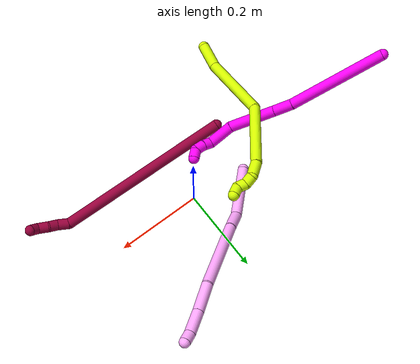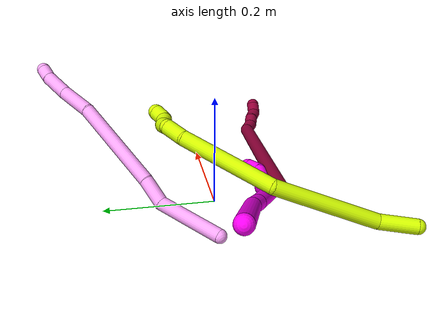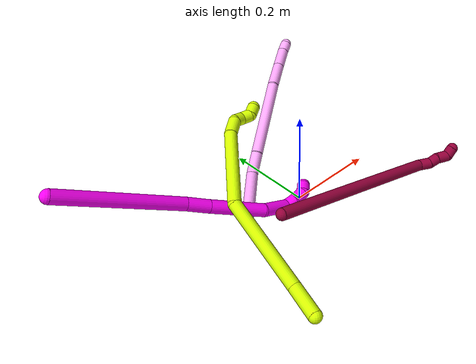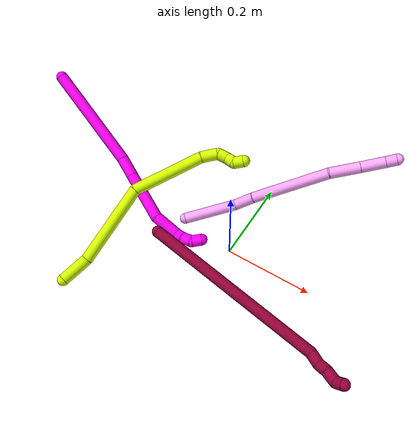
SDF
<sdf version="1.7">
 <world name="default">
  <model name="photoneo_s_sensor">
   <static>1</static>
   <pose>0 0 2 1.57079 1.57079 3.14159</pose>
   <link name="link">
    <inertial><mass>0.1</mass></inertial>
    <sensor name="sensor" type="depth">
     <update_rate>30</update_rate>
     <camera>
      <horizontal_fov>1.22</horizontal_fov>
      <image><width>1920</width><height>1200</height><format>B8G8R8</format></image>
      <clip><near>0.1</near><far>4</far></clip>
      <depth_camera><output>points</output></depth_camera>
     </camera>
     <plugin name="camera_plugin" filename="libgazebo_ros_depth_camera.so">
      <baseline>0.2</baseline>
      <alwaysOn>1</alwaysOn>
      <updateRate>0.0</updateRate>
      <cameraName>camera_ir</cameraName>
      <imageTopicName>/camera/color/image_raw</imageTopicName>
      <cameraInfoTopicName>/camera/color/camera_info</cameraInfoTopicName>
      <depthImageTopicName>/camera/depth/image_raw</depthImageTopicName>
      <depthImageCameraInfoTopicName>/camera/depth/camera_info</depthImageCameraInfoTopicName>
      <pointCloudTopicName>/camera/depth/points</pointCloudTopicName>
      <frameName>fr_optical</frameName>
      <pointCloudCutoff>0.1</pointCloudCutoff>
      <pointCloudCutoffMax>2.0</pointCloudCutoffMax>
      <distortionK1>0</distortionK1>
      <distortionK2>0</distortionK2>
      <distortionK3>0</distortionK3>
      <distortionT1>0</distortionT1>
      <distortionT2>0</distortionT2>
      <CxPrime>0</CxPrime>
      <Cx>0</Cx>
      <Cy>0</Cy>
      <focalLength>0</focalLength>
      <hackBaseline>0</hackBaseline>
     </plugin>
    </sensor>
   </link>
  </model>
  <model name="bin">
   <static>1</static>
   <link name="bottom">
    <collision name="collision-bottom">
     <pose>0 0 -0.01 0 -0 0</pose>
     <geometry><box><size>0.8 0.6 0.02</size></box></geometry>
     <surface>
      <friction><ode><mu>100</mu><mu2>100</mu2></ode></friction>
      <contact><collide_bitmask>65535</collide_bitmask></contact>
     </surface>
    </collision>
   </link>
   <link name="west_wall">
    <collision name="collision-west_wall">
     <pose>-0.41 0 0.1 0 -0 0</pose>
     <geometry><box><size>0.02 0.6 0.2</size></box></geometry>
     <surface>
      <friction><ode><mu>100</mu><mu2>100</mu2></ode></friction>
      <contact><collide_bitmask>65535</collide_bitmask></contact>
     </surface>
    </collision>
   </link>
   <link name="east_wall">
    <collision name="collision-east_wall">
     <pose>0.41 0 0.1 0 -0 0</pose>
     <geometry><box><size>0.02 0.6 0.2</size></box></geometry>
     <surface>
      <friction><ode><mu>100</mu><mu2>100</mu2></ode></friction>
      <contact><collide_bitmask>65535</collide_bitmask></contact>
     </surface>
    </collision>
   </link>
   <link name="south_wall">
    <collision name="collision-south_wall">
     <pose>0 -0.31 0.1 0 -0 0</pose>
     <geometry><box><size>0.8 0.02 0.2</size></box></geometry>
     <surface>
      <friction><ode><mu>100</mu><mu2>100</mu2></ode></friction>
      <contact><collide_bitmask>65535</collide_bitmask></contact>
     </surface>
    </collision>
   </link>
   <link name="north_wall">
    <collision name="collision-north_wall">
     <pose>0 0.31 0.1 0 -0 0</pose>
     <geometry><box><size>0.8 0.02 0.2</size></box></geometry>
     <surface>
      <friction><ode><mu>100</mu><mu2>100</mu2></ode></friction>
      <contact><collide_bitmask>65535</collide_bitmask></contact>
     </surface>
    </collision>
   </link>
  </model>
  <model name="4">
   <static>0</static>
   <link name="4">
    <collision name="collision-cylinder-e_1_1_4">
     <pose>0.025564 0.0043 0.056036 -0.07659 0.426898 -0.016609</pose>
     <geometry><cylinder><radius>0.0125</radius><length>0.123483</length></cylinder></geometry>
     <surface>
      <friction><ode><mu>1.16</mu><mu2>1.16</mu2><slip1>0</slip1><slip2>0</slip2></ode></friction>
      <contact><ode><kp>1e+06</kp><kd>1</kd><max_vel>0</max_vel><min_depth>0.001</min_depth></ode></contact>
     </surface>
    </collision>
    <visual name="visual-cylinder-e_1_1_4">
     <pose>0.025564 0.0043 0.056036 -0.07659 0.426898 -0.016609</pose>
     <geometry><cylinder><radius>0.0125</radius><length>0.123483</length></cylinder></geometry>
     <material><ambient>1 0.65098 0.996078 1</ambient></material>
    </visual>
    <collision name="collision-cylinder-e_2_4_5">
     <pose>0.052725 0.018265 0.134788 -0.402264 0.064603 -0.013176</pose>
     <geometry><cylinder><radius>0.0125</radius><length>0.049477</length></cylinder></geometry>
     <surface>
      <friction><ode><mu>1.16</mu><mu2>1.16</mu2><slip1>0</slip1><slip2>0</slip2></ode></friction>
      <contact><ode><kp>1e+06</kp><kd>1</kd><max_vel>0</max_vel><min_depth>0.001</min_depth></ode></contact>
     </surface>
    </collision>
    <visual name="visual-cylinder-e_2_4_5">
     <pose>0.052725 0.018265 0.134788 -0.402264 0.064603 -0.013176</pose>
     <geometry><cylinder><radius>0.0125</radius><length>0.049477</length></cylinder></geometry>
     <material><ambient>1 0.65098 0.996078 1</ambient></material>
    </visual>
    <collision name="collision-cylinder-e_3_5_6">
     <pose>0.067412 0.053436 0.243399 -0.28864 0.145068 -0.021119</pose>
     <geometry><cylinder><radius>0.0125</radius><length>0.181106</length></cylinder></geometry>
     <surface>
      <friction><ode><mu>1.16</mu><mu2>1.16</mu2><slip1>0</slip1><slip2>0</slip2></ode></friction>
      <contact><ode><kp>1e+06</kp><kd>1</kd><max_vel>0</max_vel><min_depth>0.001</min_depth></ode></contact>
     </surface>
    </collision>
    <visual name="visual-cylinder-e_3_5_6">
     <pose>0.067412 0.053436 0.243399 -0.28864 0.145068 -0.021119</pose>
     <geometry><cylinder><radius>0.0125</radius><length>0.181106</length></cylinder></geometry>
     <material><ambient>1 0.65098 0.996078 1</ambient></material>
    </visual>
    <collision name="collision-cylinder-e_4_6_7">
     <pose>0.089492 0.081403 0.361729 -0.075776 0.269629 -0.010283</pose>
     <geometry><cylinder><radius>0.0125</radius><length>0.067495</length></cylinder></geometry>
     <surface>
      <friction><ode><mu>1.16</mu><mu2>1.16</mu2><slip1>0</slip1><slip2>0</slip2></ode></friction>
      <contact><ode><kp>1e+06</kp><kd>1</kd><max_vel>0</max_vel><min_depth>0.001</min_depth></ode></contact>
     </surface>
    </collision>
    <visual name="visual-cylinder-e_4_6_7">
     <pose>0.089492 0.081403 0.361729 -0.075776 0.269629 -0.010283</pose>
     <geometry><cylinder><radius>0.0125</radius><length>0.067495</length></cylinder></geometry>
     <material><ambient>1 0.65098 0.996078 1</ambient></material>
    </visual>
    <collision name="collision-cylinder-e_5_7_8">
     <pose>0.104371 0.087135 0.420547 -0.123297 0.218006 -0.01351</pose>
     <geometry><cylinder><radius>0.0125</radius><length>0.054458</length></cylinder></geometry>
     <surface>
      <friction><ode><mu>1.16</mu><mu2>1.16</mu2><slip1>0</slip1><slip2>0</slip2></ode></friction>
      <contact><ode><kp>1e+06</kp><kd>1</kd><max_vel>0</max_vel><min_depth>0.001</min_depth></ode></contact>
     </surface>
    </collision>
    <visual name="visual-cylinder-e_5_7_8">
     <pose>0.104371 0.087135 0.420547 -0.123297 0.218006 -0.01351</pose>
     <geometry><cylinder><radius>0.0125</radius><length>0.054458</length></cylinder></geometry>
     <material><ambient>1 0.65098 0.996078 1</ambient></material>
    </visual>
    <collision name="collision-cylinder-e_6_8_2">
     <pose>0.110709 0.09312 0.4586 -0.228633 0.037426 -0.004298</pose>
     <geometry><cylinder><radius>0.0125</radius><length>0.023981</length></cylinder></geometry>
     <surface>
      <friction><ode><mu>1.16</mu><mu2>1.16</mu2><slip1>0</slip1><slip2>0</slip2></ode></friction>
      <contact><ode><kp>1e+06</kp><kd>1</kd><max_vel>0</max_vel><min_depth>0.001</min_depth></ode></contact>
     </surface>
    </collision>
    <visual name="visual-cylinder-e_6_8_2">
     <pose>0.110709 0.09312 0.4586 -0.228633 0.037426 -0.004298</pose>
     <geometry><cylinder><radius>0.0125</radius><length>0.023981</length></cylinder></geometry>
     <material><ambient>1 0.65098 0.996078 1</ambient></material>
    </visual>
    <collision name="collision-sphere-2">
     <pose>0.111157 0.095836 0.47027 0 -0 0</pose>
     <geometry><sphere><radius>0.0125</radius></sphere></geometry>
     <surface>
      <friction><ode><mu>1.16</mu><mu2>1.16</mu2><slip1>0</slip1><slip2>0</slip2></ode></friction>
      <contact><ode><kp>1e+06</kp><kd>1</kd><max_vel>0</max_vel><min_depth>0.001</min_depth></ode></contact>
     </surface>
    </collision>
    <visual name="visual-sphere-2">
     <pose>0.111157 0.095836 0.47027 0 -0 0</pose>
     <geometry><sphere><radius>0.0125</radius></sphere></geometry>
     <material><ambient>1 0.65098 0.996078 1</ambient></material>
    </visual>
    <collision name="collision-sphere-4">
     <pose>0.051128 0.0086 0.112071 0 -0 0</pose>
     <geometry><sphere><radius>0.0125</radius></sphere></geometry>
     <surface>
      <friction><ode><mu>1.16</mu><mu2>1.16</mu2><slip1>0</slip1><slip2>0</slip2></ode></friction>
      <contact><ode><kp>1e+06</kp><kd>1</kd><max_vel>0</max_vel><min_depth>0.001</min_depth></ode></contact>
     </surface>
    </collision>
    <visual name="visual-sphere-4">
     <pose>0.051128 0.0086 0.112071 0 -0 0</pose>
     <geometry><sphere><radius>0.0125</radius></sphere></geometry>
     <material><ambient>1 0.65098 0.996078 1</ambient></material>
    </visual>
    <collision name="collision-sphere-1">
     <geometry><sphere><radius>0.0125</radius></sphere></geometry>
     <surface>
      <friction><ode><mu>1.16</mu><mu2>1.16</mu2><slip1>0</slip1><slip2>0</slip2></ode></friction>
      <contact><ode><kp>1e+06</kp><kd>1</kd><max_vel>0</max_vel><min_depth>0.001</min_depth></ode></contact>
     </surface>
    </collision>
    <visual name="visual-sphere-1">
     <geometry><sphere><radius>0.0125</radius></sphere></geometry>
     <material><ambient>1 0.65098 0.996078 1</ambient></material>
    </visual>
    <collision name="collision-sphere-8">
     <pose>0.11026 0.090405 0.446929 0 -0 0</pose>
     <geometry><sphere><radius>0.0125</radius></sphere></geometry>
     <surface>
      <friction><ode><mu>1.16</mu><mu2>1.16</mu2><slip1>0</slip1><slip2>0</slip2></ode></friction>
      <contact><ode><kp>1e+06</kp><kd>1</kd><max_vel>0</max_vel><min_depth>0.001</min_depth></ode></contact>
     </surface>
    </collision>
    <visual name="visual-sphere-8">
     <pose>0.11026 0.090405 0.446929 0 -0 0</pose>
     <geometry><sphere><radius>0.0125</radius></sphere></geometry>
     <material><ambient>1 0.65098 0.996078 1</ambient></material>
    </visual>
    <collision name="collision-sphere-5">
     <pose>0.054322 0.02793 0.157504 0 -0 0</pose>
     <geometry><sphere><radius>0.0125</radius></sphere></geometry>
     <surface>
      <friction><ode><mu>1.16</mu><mu2>1.16</mu2><slip1>0</slip1><slip2>0</slip2></ode></friction>
      <contact><ode><kp>1e+06</kp><kd>1</kd><max_vel>0</max_vel><min_depth>0.001</min_depth></ode></contact>
     </surface>
    </collision>
    <visual name="visual-sphere-5">
     <pose>0.054322 0.02793 0.157504 0 -0 0</pose>
     <geometry><sphere><radius>0.0125</radius></sphere></geometry>
     <material><ambient>1 0.65098 0.996078 1</ambient></material>
    </visual>
    <collision name="collision-sphere-6">
     <pose>0.080503 0.078941 0.329294 0 -0 0</pose>
     <geometry><sphere><radius>0.0125</radius></sphere></geometry>
     <surface>
      <friction><ode><mu>1.16</mu><mu2>1.16</mu2><slip1>0</slip1><slip2>0</slip2></ode></friction>
      <contact><ode><kp>1e+06</kp><kd>1</kd><max_vel>0</max_vel><min_depth>0.001</min_depth></ode></contact>
     </surface>
    </collision>
    <visual name="visual-sphere-6">
     <pose>0.080503 0.078941 0.329294 0 -0 0</pose>
     <geometry><sphere><radius>0.0125</radius></sphere></geometry>
     <material><ambient>1 0.65098 0.996078 1</ambient></material>
    </visual>
    <collision name="collision-sphere-7">
     <pose>0.098482 0.083866 0.394164 0 -0 0</pose>
     <geometry><sphere><radius>0.0125</radius></sphere></geometry>
     <surface>
      <friction><ode><mu>1.16</mu><mu2>1.16</mu2><slip1>0</slip1><slip2>0</slip2></ode></friction>
      <contact><ode><kp>1e+06</kp><kd>1</kd><max_vel>0</max_vel><min_depth>0.001</min_depth></ode></contact>
     </surface>
    </collision>
    <visual name="visual-sphere-7">
     <pose>0.098482 0.083866 0.394164 0 -0 0</pose>
     <geometry><sphere><radius>0.0125</radius></sphere></geometry>
     <material><ambient>1 0.65098 0.996078 1</ambient></material>
    </visual>
    <inertial>
     <pose>0.064706 0.04717 0.231968 0 -0 0</pose>
     <mass>0.5</mass>
     <inertia>
      <ixx>0.000696</ixx>
      <ixy>0</ixy>
      <ixz>0</ixz>
      <iyy>0.000694</iyy>
      <iyz>0</iyz>
      <izz>-0.000276</izz>
     </inertia>
    </inertial>
   </link>
   <pose>-0.132307 0.016406 0.011487 1.30068 0.315199 1.81667</pose>
  </model>
  <model name="8">
   <static>0</static>
   <link name="8">
    <collision name="collision-cylinder-e_1_1_4">
     <pose>0.186236 -0.015188 0.078467 0.191189 1.16541 0.126219</pose>
     <geometry><cylinder><radius>0.0125</radius><length>0.405322</length></cylinder></geometry>
     <surface>
      <friction><ode><mu>1.16</mu><mu2>1.16</mu2><slip1>0</slip1><slip2>0</slip2></ode></friction>
      <contact><ode><kp>1e+06</kp><kd>1</kd><max_vel>0</max_vel><min_depth>0.001</min_depth></ode></contact>
     </surface>
    </collision>
    <visual name="visual-cylinder-e_1_1_4">
     <pose>0.186236 -0.015188 0.078467 0.191189 1.16541 0.126219</pose>
     <geometry><cylinder><radius>0.0125</radius><length>0.405322</length></cylinder></geometry>
     <material><ambient>0.584314 0 0.227451 1</ambient></material>
    </visual>
    <collision name="collision-cylinder-e_2_4_5">
     <pose>0.382344 -0.037364 0.162553 0.893702 0.833428 0.418008</pose>
     <geometry><cylinder><radius>0.0125</radius><length>0.026674</length></cylinder></geometry>
     <surface>
      <friction><ode><mu>1.16</mu><mu2>1.16</mu2><slip1>0</slip1><slip2>0</slip2></ode></friction>
      <contact><ode><kp>1e+06</kp><kd>1</kd><max_vel>0</max_vel><min_depth>0.001</min_depth></ode></contact>
     </surface>
    </collision>
    <visual name="visual-cylinder-e_2_4_5">
     <pose>0.382344 -0.037364 0.162553 0.893702 0.833428 0.418008</pose>
     <geometry><cylinder><radius>0.0125</radius><length>0.026674</length></cylinder></geometry>
     <material><ambient>0.584314 0 0.227451 1</ambient></material>
    </visual>
    <collision name="collision-cylinder-e_3_5_6">
     <pose>0.398547 -0.048307 0.17577 0.479837 0.63639 0.160809</pose>
     <geometry><cylinder><radius>0.0125</radius><length>0.021303</length></cylinder></geometry>
     <surface>
      <friction><ode><mu>1.16</mu><mu2>1.16</mu2><slip1>0</slip1><slip2>0</slip2></ode></friction>
      <contact><ode><kp>1e+06</kp><kd>1</kd><max_vel>0</max_vel><min_depth>0.001</min_depth></ode></contact>
     </surface>
    </collision>
    <visual name="visual-cylinder-e_3_5_6">
     <pose>0.398547 -0.048307 0.17577 0.479837 0.63639 0.160809</pose>
     <geometry><cylinder><radius>0.0125</radius><length>0.021303</length></cylinder></geometry>
     <material><ambient>0.584314 0 0.227451 1</ambient></material>
    </visual>
    <collision name="collision-cylinder-e_4_6_7">
     <pose>0.414545 -0.058409 0.189508 0.786049 0.838769 0.365556</pose>
     <geometry><cylinder><radius>0.0125</radius><length>0.025995</length></cylinder></geometry>
     <surface>
      <friction><ode><mu>1.16</mu><mu2>1.16</mu2><slip1>0</slip1><slip2>0</slip2></ode></friction>
      <contact><ode><kp>1e+06</kp><kd>1</kd><max_vel>0</max_vel><min_depth>0.001</min_depth></ode></contact>
     </surface>
    </collision>
    <visual name="visual-cylinder-e_4_6_7">
     <pose>0.414545 -0.058409 0.189508 0.786049 0.838769 0.365556</pose>
     <geometry><cylinder><radius>0.0125</radius><length>0.025995</length></cylinder></geometry>
     <material><ambient>0.584314 0 0.227451 1</ambient></material>
    </visual>
    <collision name="collision-cylinder-e_5_7_2">
     <pose>0.426957 -0.06672 0.205392 0.218542 0.268248 0.029604</pose>
     <geometry><cylinder><radius>0.0125</radius><length>0.020705</length></cylinder></geometry>
     <surface>
      <friction><ode><mu>1.16</mu><mu2>1.16</mu2><slip1>0</slip1><slip2>0</slip2></ode></friction>
      <contact><ode><kp>1e+06</kp><kd>1</kd><max_vel>0</max_vel><min_depth>0.001</min_depth></ode></contact>
     </surface>
    </collision>
    <visual name="visual-cylinder-e_5_7_2">
     <pose>0.426957 -0.06672 0.205392 0.218542 0.268248 0.029604</pose>
     <geometry><cylinder><radius>0.0125</radius><length>0.020705</length></cylinder></geometry>
     <material><ambient>0.584314 0 0.227451 1</ambient></material>
    </visual>
    <collision name="collision-sphere-2">
     <pose>0.429701 -0.068884 0.215137 0 -0 0</pose>
     <geometry><sphere><radius>0.0125</radius></sphere></geometry>
     <surface>
      <friction><ode><mu>1.16</mu><mu2>1.16</mu2><slip1>0</slip1><slip2>0</slip2></ode></friction>
      <contact><ode><kp>1e+06</kp><kd>1</kd><max_vel>0</max_vel><min_depth>0.001</min_depth></ode></contact>
     </surface>
    </collision>
    <visual name="visual-sphere-2">
     <pose>0.429701 -0.068884 0.215137 0 -0 0</pose>
     <geometry><sphere><radius>0.0125</radius></sphere></geometry>
     <material><ambient>0.584314 0 0.227451 1</ambient></material>
    </visual>
    <collision name="collision-sphere-7">
     <pose>0.424213 -0.064556 0.195647 0 -0 0</pose>
     <geometry><sphere><radius>0.0125</radius></sphere></geometry>
     <surface>
      <friction><ode><mu>1.16</mu><mu2>1.16</mu2><slip1>0</slip1><slip2>0</slip2></ode></friction>
      <contact><ode><kp>1e+06</kp><kd>1</kd><max_vel>0</max_vel><min_depth>0.001</min_depth></ode></contact>
     </surface>
    </collision>
    <visual name="visual-sphere-7">
     <pose>0.424213 -0.064556 0.195647 0 -0 0</pose>
     <geometry><sphere><radius>0.0125</radius></sphere></geometry>
     <material><ambient>0.584314 0 0.227451 1</ambient></material>
    </visual>
    <collision name="collision-sphere-6">
     <pose>0.404877 -0.052262 0.183369 0 -0 0</pose>
     <geometry><sphere><radius>0.0125</radius></sphere></geometry>
     <surface>
      <friction><ode><mu>1.16</mu><mu2>1.16</mu2><slip1>0</slip1><slip2>0</slip2></ode></friction>
      <contact><ode><kp>1e+06</kp><kd>1</kd><max_vel>0</max_vel><min_depth>0.001</min_depth></ode></contact>
     </surface>
    </collision>
    <visual name="visual-sphere-6">
     <pose>0.404877 -0.052262 0.183369 0 -0 0</pose>
     <geometry><sphere><radius>0.0125</radius></sphere></geometry>
     <material><ambient>0.584314 0 0.227451 1</ambient></material>
    </visual>
    <collision name="collision-sphere-5">
     <pose>0.392217 -0.044353 0.168171 0 -0 0</pose>
     <geometry><sphere><radius>0.0125</radius></sphere></geometry>
     <surface>
      <friction><ode><mu>1.16</mu><mu2>1.16</mu2><slip1>0</slip1><slip2>0</slip2></ode></friction>
      <contact><ode><kp>1e+06</kp><kd>1</kd><max_vel>0</max_vel><min_depth>0.001</min_depth></ode></contact>
     </surface>
    </collision>
    <visual name="visual-sphere-5">
     <pose>0.392217 -0.044353 0.168171 0 -0 0</pose>
     <geometry><sphere><radius>0.0125</radius></sphere></geometry>
     <material><ambient>0.584314 0 0.227451 1</ambient></material>
    </visual>
    <collision name="collision-sphere-1">
     <geometry><sphere><radius>0.0125</radius></sphere></geometry>
     <surface>
      <friction><ode><mu>1.16</mu><mu2>1.16</mu2><slip1>0</slip1><slip2>0</slip2></ode></friction>
      <contact><ode><kp>1e+06</kp><kd>1</kd><max_vel>0</max_vel><min_depth>0.001</min_depth></ode></contact>
     </surface>
    </collision>
    <visual name="visual-sphere-1">
     <geometry><sphere><radius>0.0125</radius></sphere></geometry>
     <material><ambient>0.584314 0 0.227451 1</ambient></material>
    </visual>
    <collision name="collision-sphere-4">
     <pose>0.372472 -0.030375 0.156935 0 -0 0</pose>
     <geometry><sphere><radius>0.0125</radius></sphere></geometry>
     <surface>
      <friction><ode><mu>1.16</mu><mu2>1.16</mu2><slip1>0</slip1><slip2>0</slip2></ode></friction>
      <contact><ode><kp>1e+06</kp><kd>1</kd><max_vel>0</max_vel><min_depth>0.001</min_depth></ode></contact>
     </surface>
    </collision>
    <visual name="visual-sphere-4">
     <pose>0.372472 -0.030375 0.156935 0 -0 0</pose>
     <geometry><sphere><radius>0.0125</radius></sphere></geometry>
     <material><ambient>0.584314 0 0.227451 1</ambient></material>
    </visual>
    <inertial>
     <pose>0.227582 -0.022163 0.098128 0 -0 0</pose>
     <mass>0.5</mass>
     <inertia>
      <ixx>0.002495</ixx>
      <ixy>0</ixy>
      <ixz>0</ixz>
      <iyy>0.005822</iyy>
      <iyz>0</iyz>
      <izz>-0.004682</izz>
     </inertia>
    </inertial>
   </link>
   <pose>-0.130011 -0.084824 0.088675 -0.264333 0.596081 -0.119896</pose>
  </model>
  <model name="10">
   <static>0</static>
   <link name="10">
    <collision name="collision-cylinder-e_1_1_4">
     <pose>0.002801 -0.002575 -0.113252 3.11886 0.024724 1.65471</pose>
     <geometry><cylinder><radius>0.0125</radius><length>0.226632</length></cylinder></geometry>
     <surface>
      <friction><ode><mu>1.16</mu><mu2>1.16</mu2><slip1>0</slip1><slip2>0</slip2></ode></friction>
      <contact><ode><kp>1e+06</kp><kd>1</kd><max_vel>0</max_vel><min_depth>0.001</min_depth></ode></contact>
     </surface>
    </collision>
    <visual name="visual-cylinder-e_1_1_4">
     <pose>0.002801 -0.002575 -0.113252 3.11886 0.024724 1.65471</pose>
     <geometry><cylinder><radius>0.0125</radius><length>0.226632</length></cylinder></geometry>
     <material><ambient>1 0 0.964706 1</ambient></material>
    </visual>
    <collision name="collision-cylinder-e_2_4_5">
     <pose>0.005711 -0.008613 -0.248052 2.98224 0.00497 0.062222</pose>
     <geometry><cylinder><radius>0.0125</radius><length>0.043649</length></cylinder></geometry>
     <surface>
      <friction><ode><mu>1.16</mu><mu2>1.16</mu2><slip1>0</slip1><slip2>0</slip2></ode></friction>
      <contact><ode><kp>1e+06</kp><kd>1</kd><max_vel>0</max_vel><min_depth>0.001</min_depth></ode></contact>
     </surface>
    </collision>
    <visual name="visual-cylinder-e_2_4_5">
     <pose>0.005711 -0.008613 -0.248052 2.98224 0.00497 0.062222</pose>
     <geometry><cylinder><radius>0.0125</radius><length>0.043649</length></cylinder></geometry>
     <material><ambient>1 0 0.964706 1</ambient></material>
    </visual>
    <collision name="collision-cylinder-e_3_5_6">
     <pose>0.00794 -0.021297 -0.32235 2.96853 0.03958 0.448657</pose>
     <geometry><cylinder><radius>0.0125</radius><length>0.107185</length></cylinder></geometry>
     <surface>
      <friction><ode><mu>1.16</mu><mu2>1.16</mu2><slip1>0</slip1><slip2>0</slip2></ode></friction>
      <contact><ode><kp>1e+06</kp><kd>1</kd><max_vel>0</max_vel><min_depth>0.001</min_depth></ode></contact>
     </surface>
    </collision>
    <visual name="visual-cylinder-e_3_5_6">
     <pose>0.00794 -0.021297 -0.32235 2.96853 0.03958 0.448657</pose>
     <geometry><cylinder><radius>0.0125</radius><length>0.107185</length></cylinder></geometry>
     <material><ambient>1 0 0.964706 1</ambient></material>
    </visual>
    <collision name="collision-cylinder-e_4_6_7">
     <pose>0.015179 -0.026082 -0.403618 -2.98726 0.175516 -1.69967</pose>
     <geometry><cylinder><radius>0.0125</radius><length>0.05862</length></cylinder></geometry>
     <surface>
      <friction><ode><mu>1.16</mu><mu2>1.16</mu2><slip1>0</slip1><slip2>0</slip2></ode></friction>
      <contact><ode><kp>1e+06</kp><kd>1</kd><max_vel>0</max_vel><min_depth>0.001</min_depth></ode></contact>
     </surface>
    </collision>
    <visual name="visual-cylinder-e_4_6_7">
     <pose>0.015179 -0.026082 -0.403618 -2.98726 0.175516 -1.69967</pose>
     <geometry><cylinder><radius>0.0125</radius><length>0.05862</length></cylinder></geometry>
     <material><ambient>1 0 0.964706 1</ambient></material>
    </visual>
    <collision name="collision-cylinder-e_5_7_8">
     <pose>0.02716 -0.023451 -0.439406 2.89823 0.741609 2.53213</pose>
     <geometry><cylinder><radius>0.0125</radius><length>0.020321</length></cylinder></geometry>
     <surface>
      <friction><ode><mu>1.16</mu><mu2>1.16</mu2><slip1>0</slip1><slip2>0</slip2></ode></friction>
      <contact><ode><kp>1e+06</kp><kd>1</kd><max_vel>0</max_vel><min_depth>0.001</min_depth></ode></contact>
     </surface>
    </collision>
    <visual name="visual-cylinder-e_5_7_8">
     <pose>0.02716 -0.023451 -0.439406 2.89823 0.741609 2.53213</pose>
     <geometry><cylinder><radius>0.0125</radius><length>0.020321</length></cylinder></geometry>
     <material><ambient>1 0 0.964706 1</ambient></material>
    </visual>
    <collision name="collision-cylinder-e_6_8_9">
     <pose>0.041727 -0.024739 -0.454782 -3.07779 0.759001 -2.98192</pose>
     <geometry><cylinder><radius>0.0125</radius><length>0.022386</length></cylinder></geometry>
     <surface>
      <friction><ode><mu>1.16</mu><mu2>1.16</mu2><slip1>0</slip1><slip2>0</slip2></ode></friction>
      <contact><ode><kp>1e+06</kp><kd>1</kd><max_vel>0</max_vel><min_depth>0.001</min_depth></ode></contact>
     </surface>
    </collision>
    <visual name="visual-cylinder-e_6_8_9">
     <pose>0.041727 -0.024739 -0.454782 -3.07779 0.759001 -2.98192</pose>
     <geometry><cylinder><radius>0.0125</radius><length>0.022386</length></cylinder></geometry>
     <material><ambient>1 0 0.964706 1</ambient></material>
    </visual>
    <collision name="collision-cylinder-e_7_9_2">
     <pose>0.055551 -0.017086 -0.467791 -2.17307 0.615391 -1.08688</pose>
     <geometry><cylinder><radius>0.0125</radius><length>0.021206</length></cylinder></geometry>
     <surface>
      <friction><ode><mu>1.16</mu><mu2>1.16</mu2><slip1>0</slip1><slip2>0</slip2></ode></friction>
      <contact><ode><kp>1e+06</kp><kd>1</kd><max_vel>0</max_vel><min_depth>0.001</min_depth></ode></contact>
     </surface>
    </collision>
    <visual name="visual-cylinder-e_7_9_2">
     <pose>0.055551 -0.017086 -0.467791 -2.17307 0.615391 -1.08688</pose>
     <geometry><cylinder><radius>0.0125</radius><length>0.021206</length></cylinder></geometry>
     <material><ambient>1 0 0.964706 1</ambient></material>
    </visual>
    <collision name="collision-sphere-2">
     <pose>0.061672 -0.009952 -0.472696 0 -0 0</pose>
     <geometry><sphere><radius>0.0125</radius></sphere></geometry>
     <surface>
      <friction><ode><mu>1.16</mu><mu2>1.16</mu2><slip1>0</slip1><slip2>0</slip2></ode></friction>
      <contact><ode><kp>1e+06</kp><kd>1</kd><max_vel>0</max_vel><min_depth>0.001</min_depth></ode></contact>
     </surface>
    </collision>
    <visual name="visual-sphere-2">
     <pose>0.061672 -0.009952 -0.472696 0 -0 0</pose>
     <geometry><sphere><radius>0.0125</radius></sphere></geometry>
     <material><ambient>1 0 0.964706 1</ambient></material>
    </visual>
    <collision name="collision-sphere-9">
     <pose>0.04943 -0.024221 -0.462886 0 -0 0</pose>
     <geometry><sphere><radius>0.0125</radius></sphere></geometry>
     <surface>
      <friction><ode><mu>1.16</mu><mu2>1.16</mu2><slip1>0</slip1><slip2>0</slip2></ode></friction>
      <contact><ode><kp>1e+06</kp><kd>1</kd><max_vel>0</max_vel><min_depth>0.001</min_depth></ode></contact>
     </surface>
    </collision>
    <visual name="visual-sphere-9">
     <pose>0.04943 -0.024221 -0.462886 0 -0 0</pose>
     <geometry><sphere><radius>0.0125</radius></sphere></geometry>
     <material><ambient>1 0 0.964706 1</ambient></material>
    </visual>
    <collision name="collision-sphere-4">
     <pose>0.005603 -0.00515 -0.226504 0 -0 0</pose>
     <geometry><sphere><radius>0.0125</radius></sphere></geometry>
     <surface>
      <friction><ode><mu>1.16</mu><mu2>1.16</mu2><slip1>0</slip1><slip2>0</slip2></ode></friction>
      <contact><ode><kp>1e+06</kp><kd>1</kd><max_vel>0</max_vel><min_depth>0.001</min_depth></ode></contact>
     </surface>
    </collision>
    <visual name="visual-sphere-4">
     <pose>0.005603 -0.00515 -0.226504 0 -0 0</pose>
     <geometry><sphere><radius>0.0125</radius></sphere></geometry>
     <material><ambient>1 0 0.964706 1</ambient></material>
    </visual>
    <collision name="collision-sphere-1">
     <geometry><sphere><radius>0.0125</radius></sphere></geometry>
     <surface>
      <friction><ode><mu>1.16</mu><mu2>1.16</mu2><slip1>0</slip1><slip2>0</slip2></ode></friction>
      <contact><ode><kp>1e+06</kp><kd>1</kd><max_vel>0</max_vel><min_depth>0.001</min_depth></ode></contact>
     </surface>
    </collision>
    <visual name="visual-sphere-1">
     <geometry><sphere><radius>0.0125</radius></sphere></geometry>
     <material><ambient>1 0 0.964706 1</ambient></material>
    </visual>
    <collision name="collision-sphere-8">
     <pose>0.034023 -0.025256 -0.446677 0 -0 0</pose>
     <geometry><sphere><radius>0.0125</radius></sphere></geometry>
     <surface>
      <friction><ode><mu>1.16</mu><mu2>1.16</mu2><slip1>0</slip1><slip2>0</slip2></ode></friction>
      <contact><ode><kp>1e+06</kp><kd>1</kd><max_vel>0</max_vel><min_depth>0.001</min_depth></ode></contact>
     </surface>
    </collision>
    <visual name="visual-sphere-8">
     <pose>0.034023 -0.025256 -0.446677 0 -0 0</pose>
     <geometry><sphere><radius>0.0125</radius></sphere></geometry>
     <material><ambient>1 0 0.964706 1</ambient></material>
    </visual>
    <collision name="collision-sphere-5">
     <pose>0.00582 -0.012076 -0.269599 0 -0 0</pose>
     <geometry><sphere><radius>0.0125</radius></sphere></geometry>
     <surface>
      <friction><ode><mu>1.16</mu><mu2>1.16</mu2><slip1>0</slip1><slip2>0</slip2></ode></friction>
      <contact><ode><kp>1e+06</kp><kd>1</kd><max_vel>0</max_vel><min_depth>0.001</min_depth></ode></contact>
     </surface>
    </collision>
    <visual name="visual-sphere-5">
     <pose>0.00582 -0.012076 -0.269599 0 -0 0</pose>
     <geometry><sphere><radius>0.0125</radius></sphere></geometry>
     <material><ambient>1 0 0.964706 1</ambient></material>
    </visual>
    <collision name="collision-sphere-6">
     <pose>0.010061 -0.030518 -0.375101 0 -0 0</pose>
     <geometry><sphere><radius>0.0125</radius></sphere></geometry>
     <surface>
      <friction><ode><mu>1.16</mu><mu2>1.16</mu2><slip1>0</slip1><slip2>0</slip2></ode></friction>
      <contact><ode><kp>1e+06</kp><kd>1</kd><max_vel>0</max_vel><min_depth>0.001</min_depth></ode></contact>
     </surface>
    </collision>
    <visual name="visual-sphere-6">
     <pose>0.010061 -0.030518 -0.375101 0 -0 0</pose>
     <geometry><sphere><radius>0.0125</radius></sphere></geometry>
     <material><ambient>1 0 0.964706 1</ambient></material>
    </visual>
    <collision name="collision-sphere-7">
     <pose>0.020297 -0.021646 -0.432134 0 -0 0</pose>
     <geometry><sphere><radius>0.0125</radius></sphere></geometry>
     <surface>
      <friction><ode><mu>1.16</mu><mu2>1.16</mu2><slip1>0</slip1><slip2>0</slip2></ode></friction>
      <contact><ode><kp>1e+06</kp><kd>1</kd><max_vel>0</max_vel><min_depth>0.001</min_depth></ode></contact>
     </surface>
    </collision>
    <visual name="visual-sphere-7">
     <pose>0.020297 -0.021646 -0.432134 0 -0 0</pose>
     <geometry><sphere><radius>0.0125</radius></sphere></geometry>
     <material><ambient>1 0 0.964706 1</ambient></material>
    </visual>
    <inertial>
     <pose>0.010578 -0.012328 -0.247471 0 -0 0</pose>
     <mass>0.5</mass>
     <inertia>
      <ixx>0.001026</ixx>
      <ixy>0</ixy>
      <ixz>0</ixz>
      <iyy>0.000988</iyy>
      <iyz>0</iyz>
      <izz>-3.4e-05</izz>
     </inertia>
    </inertial>
   </link>
   <pose>-0.474204 0.058181 0.249925 -0.615439 -0.972403 0.43201</pose>
  </model>
  <model name="15">
   <static>0</static>
   <link name="15">
    <collision name="collision-cylinder-e_1_1_4">
     <pose>0.027092 0.015806 0.000627 -1.53112 1.0423 -1.00838</pose>
     <geometry><cylinder><radius>0.0125</radius><length>0.062743</length></cylinder></geometry>
     <surface>
      <friction><ode><mu>1.16</mu><mu2>1.16</mu2><slip1>0</slip1><slip2>0</slip2></ode></friction>
      <contact><ode><kp>1e+06</kp><kd>1</kd><max_vel>0</max_vel><min_depth>0.001</min_depth></ode></contact>
     </surface>
    </collision>
    <visual name="visual-cylinder-e_1_1_4">
     <pose>0.027092 0.015806 0.000627 -1.53112 1.0423 -1.00838</pose>
     <geometry><cylinder><radius>0.0125</radius><length>0.062743</length></cylinder></geometry>
     <material><ambient>0.835294 1 0 1</ambient></material>
    </visual>
    <collision name="collision-cylinder-e_2_4_5">
     <pose>0.138146 0.056825 0.020385 -0.921722 1.21032 -0.661682</pose>
     <geometry><cylinder><radius>0.0125</radius><length>0.179459</length></cylinder></geometry>
     <surface>
      <friction><ode><mu>1.16</mu><mu2>1.16</mu2><slip1>0</slip1><slip2>0</slip2></ode></friction>
      <contact><ode><kp>1e+06</kp><kd>1</kd><max_vel>0</max_vel><min_depth>0.001</min_depth></ode></contact>
     </surface>
    </collision>
    <visual name="visual-cylinder-e_2_4_5">
     <pose>0.138146 0.056825 0.020385 -0.921722 1.21032 -0.661682</pose>
     <geometry><cylinder><radius>0.0125</radius><length>0.179459</length></cylinder></geometry>
     <material><ambient>0.835294 1 0 1</ambient></material>
    </visual>
    <collision name="collision-cylinder-e_3_5_6">
     <pose>0.295377 0.09848 0.013821 -2.57236 1.17628 -2.31475</pose>
     <geometry><cylinder><radius>0.0125</radius><length>0.158731</length></cylinder></geometry>
     <surface>
      <friction><ode><mu>1.16</mu><mu2>1.16</mu2><slip1>0</slip1><slip2>0</slip2></ode></friction>
      <contact><ode><kp>1e+06</kp><kd>1</kd><max_vel>0</max_vel><min_depth>0.001</min_depth></ode></contact>
     </surface>
    </collision>
    <visual name="visual-cylinder-e_3_5_6">
     <pose>0.295377 0.09848 0.013821 -2.57236 1.17628 -2.31475</pose>
     <geometry><cylinder><radius>0.0125</radius><length>0.158731</length></cylinder></geometry>
     <material><ambient>0.835294 1 0 1</ambient></material>
    </visual>
    <collision name="collision-cylinder-e_4_6_7">
     <pose>0.383123 0.117348 -0.021844 -2.90291 0.954197 -2.68572</pose>
     <geometry><cylinder><radius>0.0125</radius><length>0.035489</length></cylinder></geometry>
     <surface>
      <friction><ode><mu>1.16</mu><mu2>1.16</mu2><slip1>0</slip1><slip2>0</slip2></ode></friction>
      <contact><ode><kp>1e+06</kp><kd>1</kd><max_vel>0</max_vel><min_depth>0.001</min_depth></ode></contact>
     </surface>
    </collision>
    <visual name="visual-cylinder-e_4_6_7">
     <pose>0.383123 0.117348 -0.021844 -2.90291 0.954197 -2.68572</pose>
     <geometry><cylinder><radius>0.0125</radius><length>0.035489</length></cylinder></geometry>
     <material><ambient>0.835294 1 0 1</ambient></material>
    </visual>
    <collision name="collision-cylinder-e_5_7_8">
     <pose>0.40086 0.122461 -0.041732 -2.87696 0.307238 -1.72154</pose>
     <geometry><cylinder><radius>0.0125</radius><length>0.02156</length></cylinder></geometry>
     <surface>
      <friction><ode><mu>1.16</mu><mu2>1.16</mu2><slip1>0</slip1><slip2>0</slip2></ode></friction>
      <contact><ode><kp>1e+06</kp><kd>1</kd><max_vel>0</max_vel><min_depth>0.001</min_depth></ode></contact>
     </surface>
    </collision>
    <visual name="visual-cylinder-e_5_7_8">
     <pose>0.40086 0.122461 -0.041732 -2.87696 0.307238 -1.72154</pose>
     <geometry><cylinder><radius>0.0125</radius><length>0.02156</length></cylinder></geometry>
     <material><ambient>0.835294 1 0 1</ambient></material>
    </visual>
    <collision name="collision-cylinder-e_6_8_9">
     <pose>0.406092 0.122522 -0.0612 2.87316 0.196508 1.26117</pose>
     <geometry><cylinder><radius>0.0125</radius><length>0.020199</length></cylinder></geometry>
     <surface>
      <friction><ode><mu>1.16</mu><mu2>1.16</mu2><slip1>0</slip1><slip2>0</slip2></ode></friction>
      <contact><ode><kp>1e+06</kp><kd>1</kd><max_vel>0</max_vel><min_depth>0.001</min_depth></ode></contact>
     </surface>
    </collision>
    <visual name="visual-cylinder-e_6_8_9">
     <pose>0.406092 0.122522 -0.0612 2.87316 0.196508 1.26117</pose>
     <geometry><cylinder><radius>0.0125</radius><length>0.020199</length></cylinder></geometry>
     <material><ambient>0.835294 1 0 1</ambient></material>
    </visual>
    <collision name="collision-cylinder-e_7_9_2">
     <pose>0.416701 0.120273 -0.077404 -3.08482 0.913619 -3.02617</pose>
     <geometry><cylinder><radius>0.0125</radius><length>0.021818</length></cylinder></geometry>
     <surface>
      <friction><ode><mu>1.16</mu><mu2>1.16</mu2><slip1>0</slip1><slip2>0</slip2></ode></friction>
      <contact><ode><kp>1e+06</kp><kd>1</kd><max_vel>0</max_vel><min_depth>0.001</min_depth></ode></contact>
     </surface>
    </collision>
    <visual name="visual-cylinder-e_7_9_2">
     <pose>0.416701 0.120273 -0.077404 -3.08482 0.913619 -3.02617</pose>
     <geometry><cylinder><radius>0.0125</radius><length>0.021818</length></cylinder></geometry>
     <material><ambient>0.835294 1 0 1</ambient></material>
    </visual>
    <collision name="collision-sphere-2">
     <pose>0.425338 0.120651 -0.084057 0 -0 0</pose>
     <geometry><sphere><radius>0.0125</radius></sphere></geometry>
     <surface>
      <friction><ode><mu>1.16</mu><mu2>1.16</mu2><slip1>0</slip1><slip2>0</slip2></ode></friction>
      <contact><ode><kp>1e+06</kp><kd>1</kd><max_vel>0</max_vel><min_depth>0.001</min_depth></ode></contact>
     </surface>
    </collision>
    <visual name="visual-sphere-2">
     <pose>0.425338 0.120651 -0.084057 0 -0 0</pose>
     <geometry><sphere><radius>0.0125</radius></sphere></geometry>
     <material><ambient>0.835294 1 0 1</ambient></material>
    </visual>
    <collision name="collision-sphere-9">
     <pose>0.408064 0.119895 -0.07075 0 -0 0</pose>
     <geometry><sphere><radius>0.0125</radius></sphere></geometry>
     <surface>
      <friction><ode><mu>1.16</mu><mu2>1.16</mu2><slip1>0</slip1><slip2>0</slip2></ode></friction>
      <contact><ode><kp>1e+06</kp><kd>1</kd><max_vel>0</max_vel><min_depth>0.001</min_depth></ode></contact>
     </surface>
    </collision>
    <visual name="visual-sphere-9">
     <pose>0.408064 0.119895 -0.07075 0 -0 0</pose>
     <geometry><sphere><radius>0.0125</radius></sphere></geometry>
     <material><ambient>0.835294 1 0 1</ambient></material>
    </visual>
    <collision name="collision-sphere-4">
     <pose>0.054183 0.031612 0.001255 0 -0 0</pose>
     <geometry><sphere><radius>0.0125</radius></sphere></geometry>
     <surface>
      <friction><ode><mu>1.16</mu><mu2>1.16</mu2><slip1>0</slip1><slip2>0</slip2></ode></friction>
      <contact><ode><kp>1e+06</kp><kd>1</kd><max_vel>0</max_vel><min_depth>0.001</min_depth></ode></contact>
     </surface>
    </collision>
    <visual name="visual-sphere-4">
     <pose>0.054183 0.031612 0.001255 0 -0 0</pose>
     <geometry><sphere><radius>0.0125</radius></sphere></geometry>
     <material><ambient>0.835294 1 0 1</ambient></material>
    </visual>
    <collision name="collision-sphere-1">
     <geometry><sphere><radius>0.0125</radius></sphere></geometry>
     <surface>
      <friction><ode><mu>1.16</mu><mu2>1.16</mu2><slip1>0</slip1><slip2>0</slip2></ode></friction>
      <contact><ode><kp>1e+06</kp><kd>1</kd><max_vel>0</max_vel><min_depth>0.001</min_depth></ode></contact>
     </surface>
    </collision>
    <visual name="visual-sphere-1">
     <geometry><sphere><radius>0.0125</radius></sphere></geometry>
     <material><ambient>0.835294 1 0 1</ambient></material>
    </visual>
    <collision name="collision-sphere-8">
     <pose>0.40412 0.125149 -0.051649 0 -0 0</pose>
     <geometry><sphere><radius>0.0125</radius></sphere></geometry>
     <surface>
      <friction><ode><mu>1.16</mu><mu2>1.16</mu2><slip1>0</slip1><slip2>0</slip2></ode></friction>
      <contact><ode><kp>1e+06</kp><kd>1</kd><max_vel>0</max_vel><min_depth>0.001</min_depth></ode></contact>
     </surface>
    </collision>
    <visual name="visual-sphere-8">
     <pose>0.40412 0.125149 -0.051649 0 -0 0</pose>
     <geometry><sphere><radius>0.0125</radius></sphere></geometry>
     <material><ambient>0.835294 1 0 1</ambient></material>
    </visual>
    <collision name="collision-sphere-5">
     <pose>0.222108 0.082038 0.039515 0 -0 0</pose>
     <geometry><sphere><radius>0.0125</radius></sphere></geometry>
     <surface>
      <friction><ode><mu>1.16</mu><mu2>1.16</mu2><slip1>0</slip1><slip2>0</slip2></ode></friction>
      <contact><ode><kp>1e+06</kp><kd>1</kd><max_vel>0</max_vel><min_depth>0.001</min_depth></ode></contact>
     </surface>
    </collision>
    <visual name="visual-sphere-5">
     <pose>0.222108 0.082038 0.039515 0 -0 0</pose>
     <geometry><sphere><radius>0.0125</radius></sphere></geometry>
     <material><ambient>0.835294 1 0 1</ambient></material>
    </visual>
    <collision name="collision-sphere-6">
     <pose>0.368646 0.114922 -0.011874 0 -0 0</pose>
     <geometry><sphere><radius>0.0125</radius></sphere></geometry>
     <surface>
      <friction><ode><mu>1.16</mu><mu2>1.16</mu2><slip1>0</slip1><slip2>0</slip2></ode></friction>
      <contact><ode><kp>1e+06</kp><kd>1</kd><max_vel>0</max_vel><min_depth>0.001</min_depth></ode></contact>
     </surface>
    </collision>
    <visual name="visual-sphere-6">
     <pose>0.368646 0.114922 -0.011874 0 -0 0</pose>
     <geometry><sphere><radius>0.0125</radius></sphere></geometry>
     <material><ambient>0.835294 1 0 1</ambient></material>
    </visual>
    <collision name="collision-sphere-7">
     <pose>0.3976 0.119774 -0.031814 0 -0 0</pose>
     <geometry><sphere><radius>0.0125</radius></sphere></geometry>
     <surface>
      <friction><ode><mu>1.16</mu><mu2>1.16</mu2><slip1>0</slip1><slip2>0</slip2></ode></friction>
      <contact><ode><kp>1e+06</kp><kd>1</kd><max_vel>0</max_vel><min_depth>0.001</min_depth></ode></contact>
     </surface>
    </collision>
    <visual name="visual-sphere-7">
     <pose>0.3976 0.119774 -0.031814 0 -0 0</pose>
     <geometry><sphere><radius>0.0125</radius></sphere></geometry>
     <material><ambient>0.835294 1 0 1</ambient></material>
    </visual>
    <inertial>
     <pose>0.225821 0.07745 0.002583 0 -0 0</pose>
     <mass>0.5</mass>
     <inertia>
      <ixx>-0.00013</ixx>
      <ixy>0</ixy>
      <ixz>0</ixz>
      <iyy>0.000595</iyy>
      <iyz>0</iyz>
      <izz>-0.001023</izz>
     </inertia>
    </inertial>
   </link>
   <pose>-0.238521 -0.273214 0.062661 -1.23506 -0.622748 1.15696</pose>
  </model>
 </world>
</sdf>
